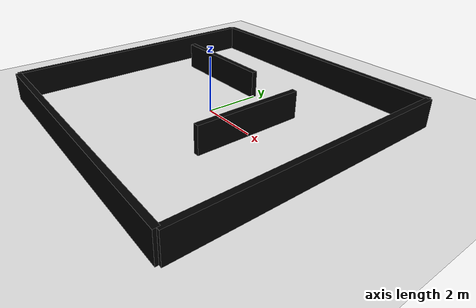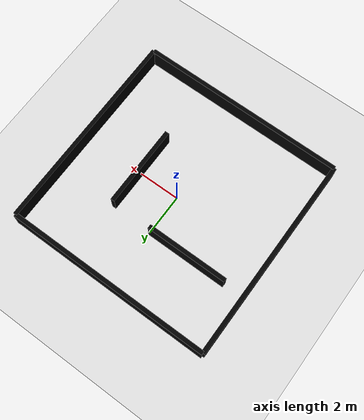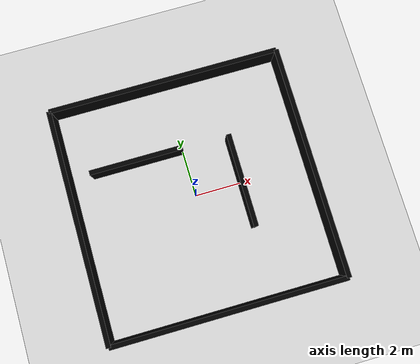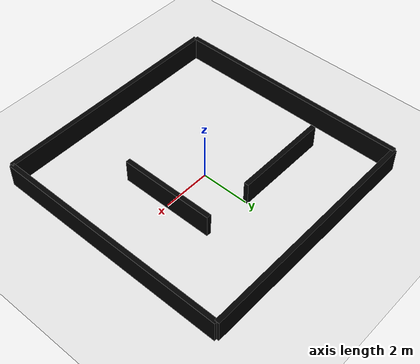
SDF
<?xml version="1.0" ?>
<sdf version="1.8">
  <world name="maze_world">

    <!-- Light -->
    <light name="sun" type="directional">
      <pose>0 0 10 0 0 0</pose>
      <direction>-0.5 0.5 -1</direction>
    </light>

    <!-- Floor -->
    <model name="floor">
      <static>true</static>
      <link name="link">
        <collision name="collision">
          <geometry>
            <plane>
              <normal>0 0 1</normal>
              <size>20 20</size>
            </plane>
          </geometry>
        </collision>
        <visual name="visual">
          <geometry>
            <plane>
              <normal>0 0 1</normal>
              <size>20 20</size>
            </plane>
          </geometry>
          <material>
            <ambient>0.8 0.8 0.8 1</ambient>
            <diffuse>0.9 0.9 0.9 1</diffuse>
            <specular>0.1 0.1 0.1 1</specular>
          </material>
        </visual>
      </link>
    </model>

    <!-- North wall -->
    <model name="north_wall">
      <static>true</static>
      <pose>0 5 0.5 0 0 0</pose>
      <link name="link">
        <collision name="collision">
          <geometry><box><size>10 0.2 1</size></box></geometry>
        </collision>
        <visual name="visual">
          <geometry><box><size>10 0.2 1</size></box></geometry>
          <material>
            <ambient>0 0 0 1</ambient>
            <diffuse>0 0 0 1</diffuse>
            <specular>0.2 0.2 0.2 1</specular>
          </material>
        </visual>
      </link>
    </model>

    <!-- South wall -->
    <model name="south_wall">
      <static>true</static>
      <pose>0 -5 0.5 0 0 0</pose>
      <link name="link">
        <collision name="collision">
          <geometry><box><size>10 0.2 1</size></box></geometry>
        </collision>
        <visual name="visual">
          <geometry><box><size>10 0.2 1</size></box></geometry>
          <material>
            <ambient>0 0 0 1</ambient>
            <diffuse>0 0 0 1</diffuse>
            <specular>0.2 0.2 0.2 1</specular>
          </material>
        </visual>
      </link>
    </model>

    <!-- East wall -->
    <model name="east_wall">
      <static>true</static>
      <pose>5 0 0.5 0 0 0</pose>
      <link name="link">
        <collision name="collision">
          <geometry><box><size>0.2 10 1</size></box></geometry>
        </collision>
        <visual name="visual">
          <geometry><box><size>0.2 10 1</size></box></geometry>
          <material>
            <ambient>0 0 0 1</ambient>
            <diffuse>0 0 0 1</diffuse>
            <specular>0.2 0.2 0.2 1</specular>
          </material>
        </visual>
      </link>
    </model>

    <!-- West wall -->
    <model name="west_wall">
      <static>true</static>
      <pose>-5 0 0.5 0 0 0</pose>
      <link name="link">
        <collision name="collision">
          <geometry><box><size>0.2 10 1</size></box></geometry>
        </collision>
        <visual name="visual">
          <geometry><box><size>0.2 10 1</size></box></geometry>
          <material>
            <ambient>0 0 0 1</ambient>
            <diffuse>0 0 0 1</diffuse>
            <specular>0.2 0.2 0.2 1</specular>
          </material>
        </visual>
      </link>
    </model>

    <!-- Inner walls -->
    <model name="wall_1">
      <static>true</static>
      <pose>-2 2 0.5 0 0 0</pose>
      <link name="link">
        <collision name="collision">
          <geometry><box><size>4 0.2 1</size></box></geometry>
        </collision>
        <visual name="visual">
          <geometry><box><size>4 0.2 1</size></box></geometry>
          <material>
            <ambient>0 0 0 1</ambient>
            <diffuse>0 0 0 1</diffuse>
          </material>
        </visual>
      </link>
    </model>

    <model name="wall_2">
      <static>true</static>
      <pose>2 0 0.5 0 0 0</pose>
      <link name="link">
        <collision name="collision">
          <geometry><box><size>0.2 4 1</size></box></geometry>
        </collision>
        <visual name="visual">
          <geometry><box><size>0.2 4 1</size></box></geometry>
          <material>
            <ambient>0 0 0 1</ambient>
            <diffuse>0 0 0 1</diffuse>
          </material>
        </visual>
      </link>
    </model>

  </world>
</sdf>
